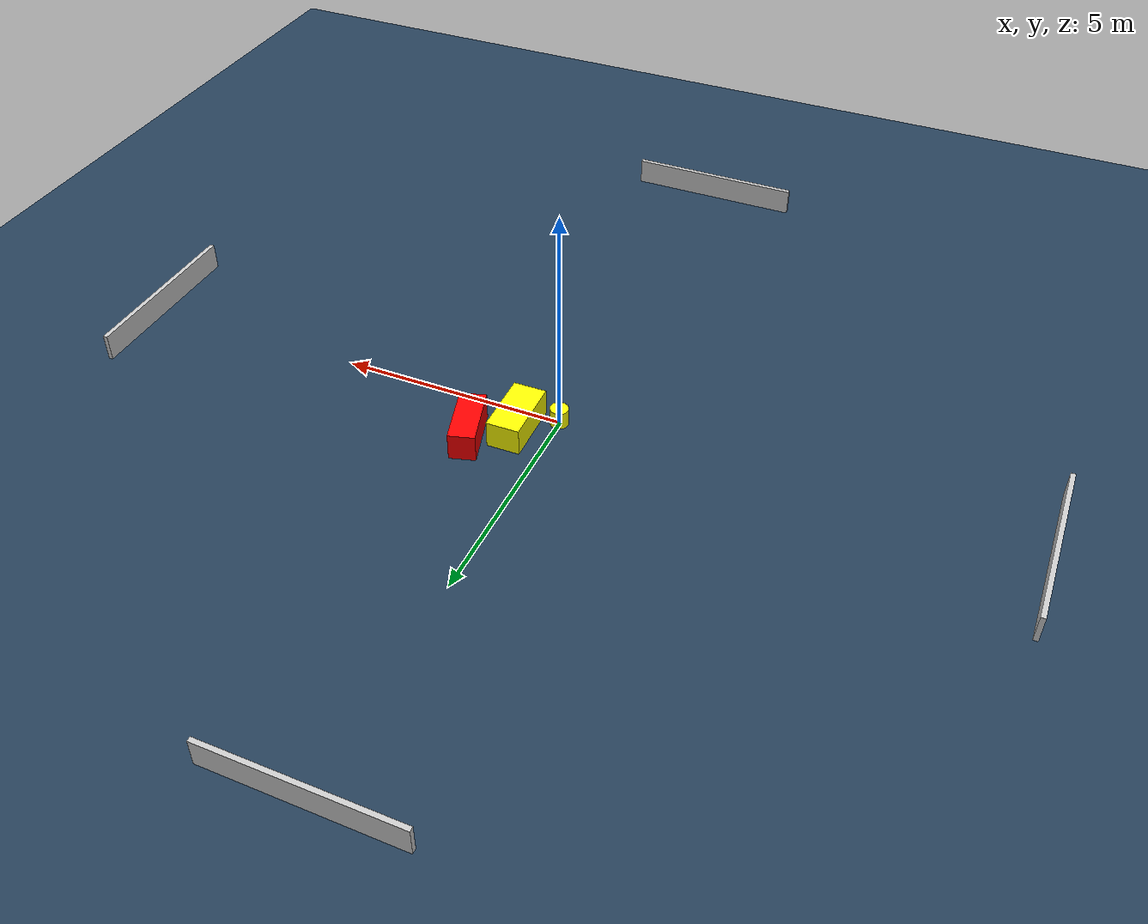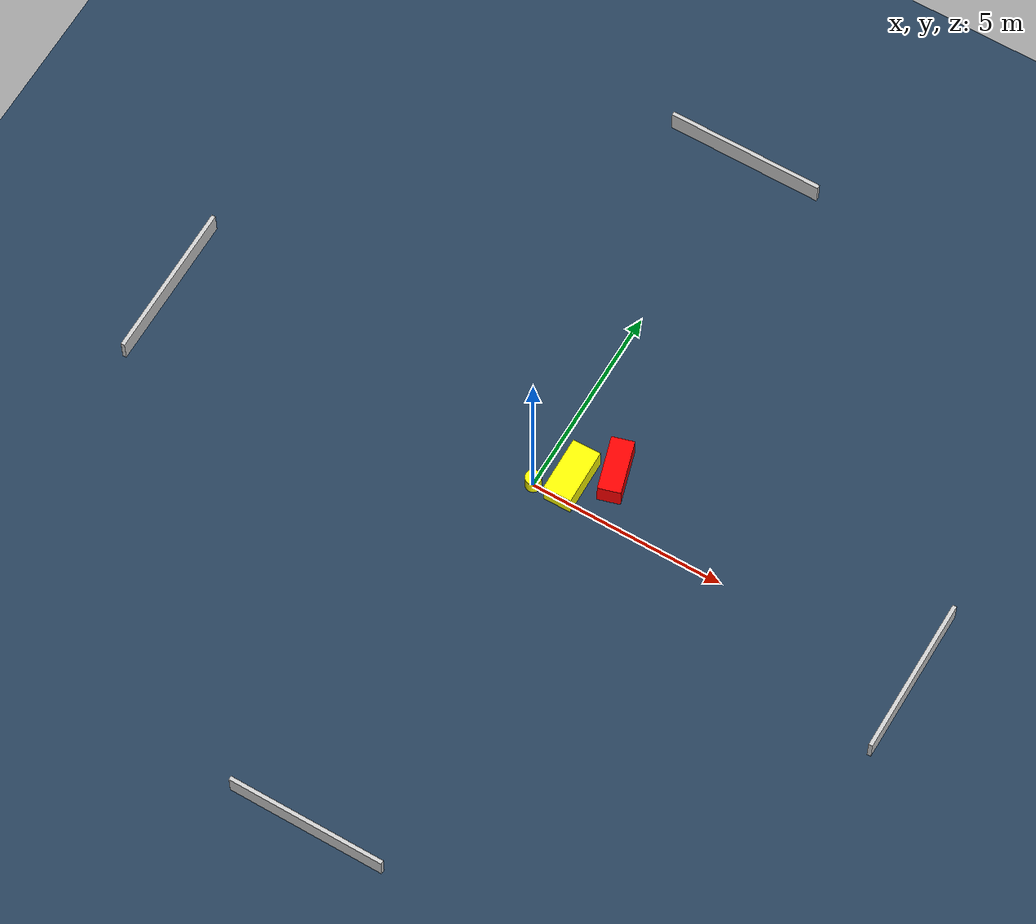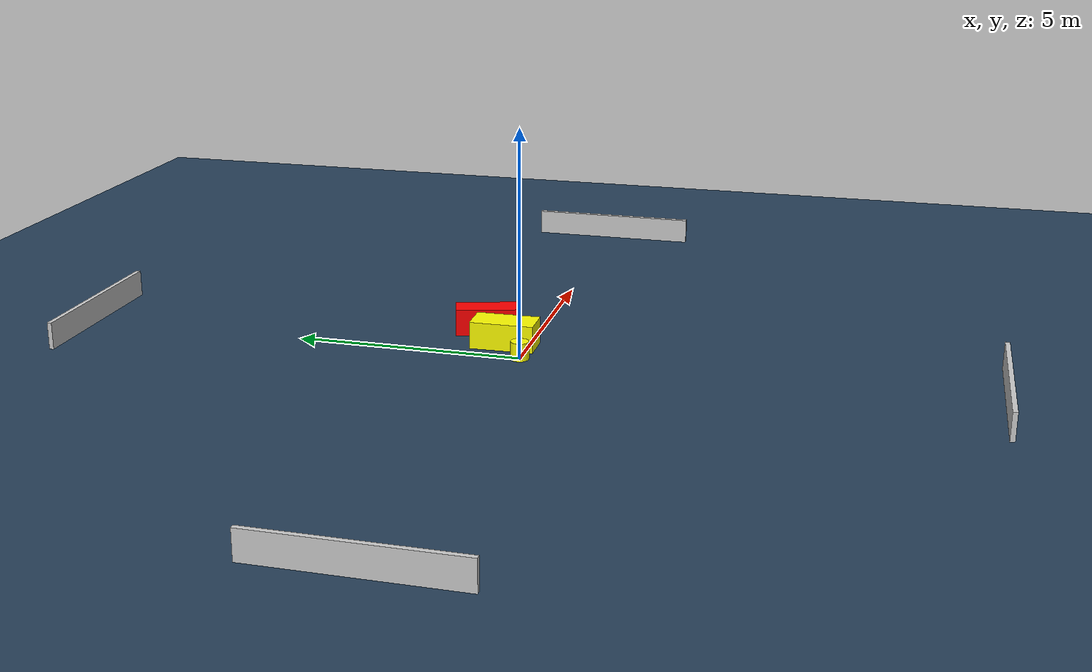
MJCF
<?xml version="1.0" ?>
<mujoco model="generated_environment">
  <option timestep="0.01" integrator="RK4" cone="elliptic"/>
  <default>
    <geom density="1"/>
  </default>
  <asset>
    <texture builtin="gradient" height="3072" name="skybox" rgb1="0.3 0.5 0.7" rgb2="0 0 0" type="skybox" width="512"/>
    <texture builtin="checker" height="300" name="groundplane" rgb1="0.2 0.3 0.4" rgb2="0.1 0.2 0.3" type="2d" width="300"/>
    <material name="groundplane" reflectance="0.2" texrepeat="5 5" texture="groundplane"/>
  </asset>
  <worldbody>
    <light dir="0 0 -1" directional="true" pos="0 0 1.5"/>
    <geom condim="3" friction="0.5 0.005 0.001" material="groundplane" name="floor" pos="0 0 0" size="0 0 0.05" type="plane"/>
    <body name="walls">
      <geom name="wall_1" condim="4" pos="-10.0 0.0 0.3" rgba="0.800000011920929 0.800000011920929 0.800000011920929 1.0" size="0.05 2.0 0.3" type="box"/>
      <geom name="wall_2" condim="4" pos="10.0 0.0 0.3" rgba="0.800000011920929 0.800000011920929 0.800000011920929 1.0" size="0.05 2.0 0.3" type="box"/>
      <geom name="wall_3" condim="4" pos="0.0 -10.0 0.3" rgba="0.800000011920929 0.800000011920929 0.800000011920929 1.0" size="2.0 0.05 0.3" type="box"/>
      <geom name="wall_4" condim="4" pos="0.0 10.0 0.3" rgba="0.800000011920929 0.800000011920929 0.800000011920929 1.0" size="2.0 0.05 0.3" type="box"/>
    </body>
    <body name="robot">
      <joint name="joint_x" type="slide" pos="0 0 0" axis="1 0 0"/>
      <joint name="joint_y" type="slide" pos="0 0 0" axis="0 1 0"/>
      <geom name="robot" type="cylinder" pos="0.0 0.0 0.2" size="0.2 0.2 0.0" mass="5.0" friction="1.0 0.005 0.0001" condim="4" rgba="1.0 1.0 0.0 1.0"/>
    </body>
    <body name="obstacle_1_movable">
      <geom name="obstacle_1_movable" condim="4" pos="0.7313469001367287 0.5272386190274506 0.3" euler="0 0 270.8805103407246" friction="0.0 0.005 0.001" rgba="1.0 1.0 0.0 1.0" size="0.7071491227770734 0.3612046545075435 0.3" type="box" mass="0.1"/>
      <joint type="free"/>
    </body>
    <body name="obstacle_2_static">
      <geom name="obstacle_2_static" condim="4" pos="1.5405273640481219 1.1686855762111812 0.3" euler="0 0 196.2983000606234" friction="0.0 0.005 0.001" rgba="1.0 0.0 0.0 1.0" size="0.28504405349106243 0.6876933624247066 0.3" type="box"/>
    </body>
  </worldbody>
  <actuator>
    <motor name="actuator_x" joint="joint_x" gear="1" ctrlrange="-1 1"/>
    <motor name="actuator_y" joint="joint_y" gear="1" ctrlrange="-1 1"/>
  </actuator>
</mujoco>
